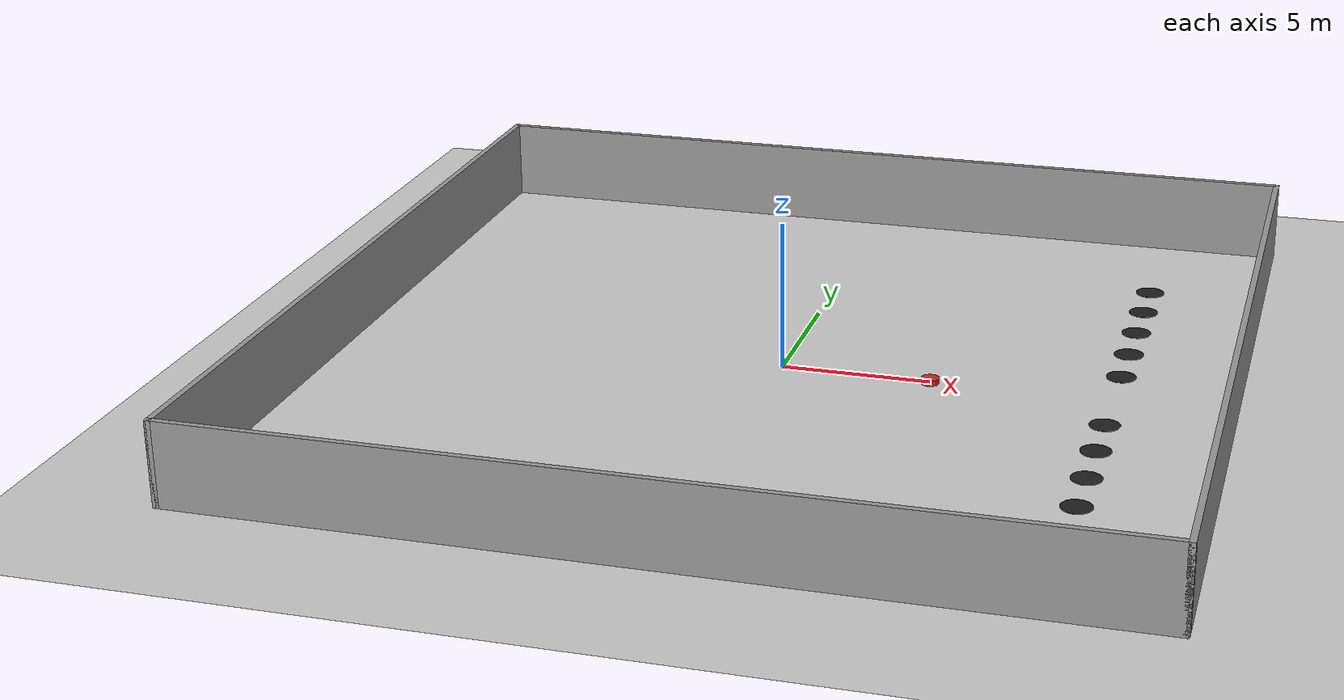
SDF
<?xml version="1.0" ?>
<sdf version="1.4">
    <world name="default">
        <!-- A global light source -->
        <include>
            <uri>model://sun</uri>
        </include>
        <!-- A ground plane -->
        <include>
            <uri>model://ground_plane</uri>
        </include>
        <!-- Own physics settings to speed up simulation -->
        <physics type='ode'>
            <max_step_size>0.01</max_step_size>
            <real_time_update_rate>300</real_time_update_rate>
            <gravity>0 0 -9.8</gravity>
        </physics>
        <model name='grey_wall0'>
            <static>1</static>
            <link name='link'>
                <pose frame=''>0 0 1.4 0 -0 0</pose>
                <collision name='collision'>
                    <geometry>
                        <box>
                            <size>30 0.2 2.8</size>
                        </box>
                    </geometry>
                    <max_contacts>10</max_contacts>
                    <surface>
                        <contact>
                            <ode/>
                        </contact>
                        <bounce/>
                        <friction>
                            <torsional>
                                <ode/>
                            </torsional>
                            <ode/>
                        </friction>
                    </surface>
                </collision>
                <visual name='visual'>
                    <cast_shadows>0</cast_shadows>
                    <geometry>
                        <box>
                            <size>30 0.2 2.8</size>
                        </box>
                    </geometry>
                    <material>
                        <script>
                            <uri>model://grey_wall/materials/scripts</uri>
                            <uri>model://grey_wall/materials/textures</uri>
                            <name>vrc/grey_wall</name>
                        </script>
                    </material>
                </visual>
                <self_collide>0</self_collide>
                <enable_wind>0</enable_wind>
                <kinematic>0</kinematic>
            </link>
            <pose frame=''>0.0 14.9 0 0 -0 0</pose>
        </model>
        <model name='grey_wall1'>
            <static>1</static>
            <link name='link'>
                <pose frame=''>0 0 1.4 0 -0 0</pose>
                <collision name='collision'>
                    <geometry>
                        <box>
                            <size>30 0.2 2.8</size>
                        </box>
                    </geometry>
                    <max_contacts>10</max_contacts>
                    <surface>
                        <contact>
                            <ode/>
                        </contact>
                        <bounce/>
                        <friction>
                            <torsional>
                                <ode/>
                            </torsional>
                            <ode/>
                        </friction>
                    </surface>
                </collision>
                <visual name='visual'>
                    <cast_shadows>0</cast_shadows>
                    <geometry>
                        <box>
                            <size>30 0.2 2.8</size>
                        </box>
                    </geometry>
                    <material>
                        <script>
                            <uri>model://grey_wall/materials/scripts</uri>
                            <uri>model://grey_wall/materials/textures</uri>
                            <name>vrc/grey_wall</name>
                        </script>
                    </material>
                </visual>
                <self_collide>0</self_collide>
                <enable_wind>0</enable_wind>
                <kinematic>0</kinematic>
            </link>
            <pose frame=''>0.0 -14.9 0 0 -0 0</pose>
        </model>
        <model name='grey_wall2'>
            <static>1</static>
            <link name='link'>
                <pose frame=''>0 0 1.4 0 -0 0</pose>
                <collision name='collision'>
                    <geometry>
                        <box>
                            <size>30 0.2 2.8</size>
                        </box>
                    </geometry>
                    <max_contacts>10</max_contacts>
                    <surface>
                        <contact>
                            <ode/>
                        </contact>
                        <bounce/>
                        <friction>
                            <torsional>
                                <ode/>
                            </torsional>
                            <ode/>
                        </friction>
                    </surface>
                </collision>
                <visual name='visual'>
                    <cast_shadows>0</cast_shadows>
                    <geometry>
                        <box>
                            <size>30 0.2 2.8</size>
                        </box>
                    </geometry>
                    <material>
                        <script>
                            <uri>model://grey_wall/materials/scripts</uri>
                            <uri>model://grey_wall/materials/textures</uri>
                            <name>vrc/grey_wall</name>
                        </script>
                    </material>
                </visual>
                <self_collide>0</self_collide>
                <enable_wind>0</enable_wind>
                <kinematic>0</kinematic>
            </link>
            <pose frame=''>-14.9 0 0 0 0 -1.57080</pose>
        </model>
        <model name='grey_wall3'>
            <static>1</static>
            <link name='link'>
                <pose frame=''>0 0 1.4 0 -0 0</pose>
                <collision name='collision'>
                    <geometry>
                        <box>
                            <size>30 0.2 2.8</size>
                        </box>
                    </geometry>
                    <max_contacts>10</max_contacts>
                    <surface>
                        <contact>
                            <ode/>
                        </contact>
                        <bounce/>
                        <friction>
                            <torsional>
                                <ode/>
                            </torsional>
                            <ode/>
                        </friction>
                    </surface>
                </collision>
                <visual name='visual'>
                    <cast_shadows>0</cast_shadows>
                    <geometry>
                        <box>
                            <size>30 0.2 2.8</size>
                        </box>
                    </geometry>
                    <material>
                        <script>
                            <uri>model://grey_wall/materials/scripts</uri>
                            <uri>model://grey_wall/materials/textures</uri>
                            <name>vrc/grey_wall</name>
                        </script>
                    </material>
                </visual>
                <self_collide>0</self_collide>
                <enable_wind>0</enable_wind>
                <kinematic>0</kinematic>
            </link>
            <pose frame=''>14.9 0 0 0 0 -1.57080</pose>
        </model>
        <model name='agent_goal0'>
            <pose>5 0 0 0 0 0</pose>
            <link name='link'>
                <inertial>
                    <mass>10</mass>
                    <inertia ixx="0.01" ixy="0.0" ixz="0.0"
                        iyy="0.01" iyz="0.0" izz="0.5" />
                </inertial>

                <collision name="goal">
                    <geometry>
                        <cylinder>
                            <radius>0.3</radius>
                            <length>0.2</length>
                        </cylinder>
                    </geometry>
			    </collision>

                <visual name='visual'>
                    <geometry>
                        <cylinder>
                            <radius>0.3</radius>
                            <length>0.3</length>
                        </cylinder>
                    </geometry>
                    <material>
                        <script>
                            <uri>file://media/materials/scripts/gazebo.material</uri>
                            <name>Gazebo/Red</name>
                        </script>
                    </material>
                </visual>

                <velocity_decay>
                    <linear>0</linear>
                    <angular>0</angular>
                </velocity_decay>

                <self_collide>0</self_collide>
                <kinematic>0</kinematic>
                <gravity>1</gravity>
            </link>
        </model>
        <model name='obs_goal0'>
            <pose>11 -10 0.005 0 0 0</pose>
            <link name='link'>
                <inertial>
                    <mass value="1" />
                    <inertia ixx="0.01" ixy="0.0" ixz="0.0"
                        iyy="0.01" iyz="0.0" izz="0.5" />
                </inertial>
                <visual name='visual'>
                    <geometry>
                        <cylinder>
                            <radius>0.5</radius>
                            <length>0.01</length>
                        </cylinder>
                    </geometry>
                    <material>
                        <script>
                            <uri>file://media/materials/scripts/gazebo.material</uri>
                            <name>Gazebo/Black</name>
                        </script>
                    </material>
                </visual>
                <velocity_decay>
                    <linear>0</linear>
                    <angular>0</angular>
                </velocity_decay>
                <self_collide>0</self_collide>
                <kinematic>0</kinematic>
                <gravity>0</gravity>
            </link>
        </model>
        <model name='obs_goal1'>
            <pose>11 -8 0.005 0 0 0</pose>
            <link name='link'>
                <inertial>
                    <mass>1</mass>
                    <inertia ixx="0.01" ixy="0.0" ixz="0.0"
                        iyy="0.01" iyz="0.0" izz="0.5" />
                </inertial>
                <visual name='visual'>
                    <geometry>
                        <cylinder>
                            <radius>0.5</radius>
                            <length>0.01</length>
                        </cylinder>
                    </geometry>
                    <material>
                        <script>
                            <uri>file://media/materials/scripts/gazebo.material</uri>
                            <name>Gazebo/Black</name>
                        </script>
                    </material>
                </visual>
                <velocity_decay>
                    <linear>0</linear>
                    <angular>0</angular>
                </velocity_decay>
                <self_collide>0</self_collide>
                <kinematic>0</kinematic>
                <gravity>0</gravity>
            </link>
        </model>
        <model name='obs_goal2'>
            <pose>11 -6 0.005 0 0 0</pose>
            <link name='link'>
                <inertial>
                    <mass>1</mass>
                </inertial>
                <visual name='visual'>
                    <geometry>
                        <cylinder>
                            <radius>0.5</radius>
                            <length>0.01</length>
                        </cylinder>
                    </geometry>
                    <material>
                        <script>
                            <uri>file://media/materials/scripts/gazebo.material</uri>
                            <name>Gazebo/Black</name>
                        </script>
                    </material>
                </visual>
                <velocity_decay>
                    <linear>0</linear>
                    <angular>0</angular>
                </velocity_decay>
                <self_collide>0</self_collide>
                <kinematic>0</kinematic>
                <gravity>0</gravity>
            </link>
        </model>
        <model name='obs_goal3'>
            <pose>11 -4 0.005 0 0 0</pose>
            <link name='link'>
                <inertial>
                    <mass>1</mass>
                </inertial>
                <visual name='visual'>
                    <geometry>
                        <cylinder>
                            <radius>0.5</radius>
                            <length>0.01</length>
                        </cylinder>
                    </geometry>
                    <material>
                        <script>
                            <uri>file://media/materials/scripts/gazebo.material</uri>
                            <name>Gazebo/Black</name>
                        </script>
                    </material>
                </visual>
                <velocity_decay>
                    <linear>0</linear>
                    <angular>0</angular>
                </velocity_decay>
                <self_collide>0</self_collide>
                <kinematic>0</kinematic>
                <gravity>0</gravity>
            </link>
        </model>
        <model name='obs_goal4'>
            <pose>11 -2 0.005 0 0 0</pose>
            <link name='link'>
                <inertial>
                    <mass>1</mass>
                </inertial>
                <visual name='visual'>
                    <geometry>
                        <cylinder>
                            <radius>0.5</radius>
                            <length>0.01</length>
                        </cylinder>
                    </geometry>
                    <material>
                        <script>
                            <uri>file://media/materials/scripts/gazebo.material</uri>
                            <name>Gazebo/Black</name>
                        </script>
                    </material>
                </visual>
                <velocity_decay>
                    <linear>0</linear>
                    <angular>0</angular>
                </velocity_decay>
                <self_collide>0</self_collide>
                <kinematic>0</kinematic>
                <gravity>0</gravity>
            </link>
        </model>
        <model name='obs_goal5'>
            <pose>11 2 0.005 0 0 0</pose>
            <link name='link'>
                <inertial>
                    <mass>1</mass>
                </inertial>
                <visual name='visual'>
                    <geometry>
                        <cylinder>
                            <radius>0.5</radius>
                            <length>0.01</length>
                        </cylinder>
                    </geometry>
                    <material>
                        <script>
                            <uri>file://media/materials/scripts/gazebo.material</uri>
                            <name>Gazebo/Black</name>
                        </script>
                    </material>
                </visual>
                <velocity_decay>
                    <linear>0</linear>
                    <angular>0</angular>
                </velocity_decay>
                <self_collide>0</self_collide>
                <kinematic>0</kinematic>
                <gravity>0</gravity>
            </link>
        </model>
        <model name='obs_goal6'>
            <pose>11 4 0.005 0 0 0</pose>
            <link name='link'>
                <inertial>
                    <mass>1</mass>
                </inertial>
                <visual name='visual'>
                    <geometry>
                        <cylinder>
                            <radius>0.5</radius>
                            <length>0.01</length>
                        </cylinder>
                    </geometry>
                    <material>
                        <script>
                            <uri>file://media/materials/scripts/gazebo.material</uri>
                            <name>Gazebo/Black</name>
                        </script>
                    </material>
                </visual>
                <velocity_decay>
                    <linear>0</linear>
                    <angular>0</angular>
                </velocity_decay>
                <self_collide>0</self_collide>
                <kinematic>0</kinematic>
                <gravity>0</gravity>
            </link>
        </model>
        <model name='obs_goal7'>
            <pose>11 6 0.005 0 0 0</pose>
            <link name='link'>
                <inertial>
                    <mass>1</mass>
                </inertial>
                <visual name='visual'>
                    <geometry>
                        <cylinder>
                            <radius>0.5</radius>
                            <length>0.01</length>
                        </cylinder>
                    </geometry>
                    <material>
                        <script>
                            <uri>file://media/materials/scripts/gazebo.material</uri>
                            <name>Gazebo/Black</name>
                        </script>
                    </material>
                </visual>
                <velocity_decay>
                    <linear>0</linear>
                    <angular>0</angular>
                </velocity_decay>
                <self_collide>0</self_collide>
                <kinematic>0</kinematic>
                <gravity>0</gravity>
            </link>
        </model>
        <model name='obs_goal8'>
            <pose>11 8 0.005 0 0 0</pose>
            <link name='link'>
                <inertial>
                    <mass>1</mass>
                </inertial>
                <visual name='visual'>
                    <geometry>
                        <cylinder>
                            <radius>0.5</radius>
                            <length>0.01</length>
                        </cylinder>
                    </geometry>
                    <material>
                        <script>
                            <uri>file://media/materials/scripts/gazebo.material</uri>
                            <name>Gazebo/Black</name>
                        </script>
                    </material>
                </visual>
                <velocity_decay>
                    <linear>0</linear>
                    <angular>0</angular>
                </velocity_decay>
                <self_collide>0</self_collide>
                <kinematic>0</kinematic>
                <gravity>0</gravity>
            </link>
        </model>
        <model name='obs_goal9'>
            <pose>11 10 0.005 0 0 0</pose>
            <link name='link'>
                <inertial>
                    <mass>1</mass>
                </inertial>
                <visual name='visual'>
                    <geometry>
                        <cylinder>
                            <radius>0.5</radius>
                            <length>0.01</length>
                        </cylinder>
                    </geometry>
                    <material>
                        <script>
                            <uri>file://media/materials/scripts/gazebo.material</uri>
                            <name>Gazebo/Black</name>
                        </script>
                    </material>
                </visual>
                <velocity_decay>
                    <linear>0</linear>
                    <angular>0</angular>
                </velocity_decay>
                <self_collide>0</self_collide>
                <kinematic>0</kinematic>
                <gravity>0</gravity>
            </link>
        </model>
    </world>
</sdf>
